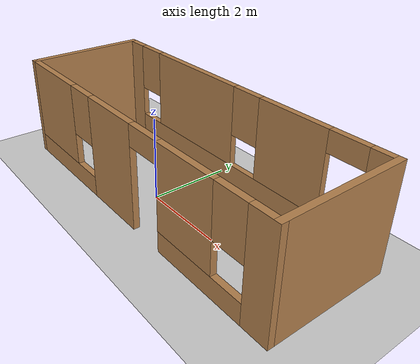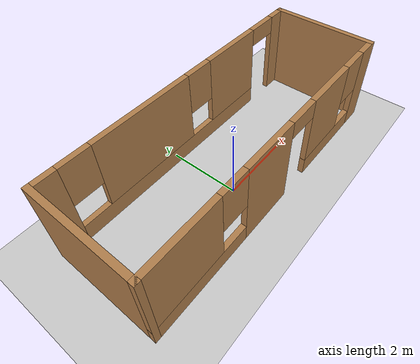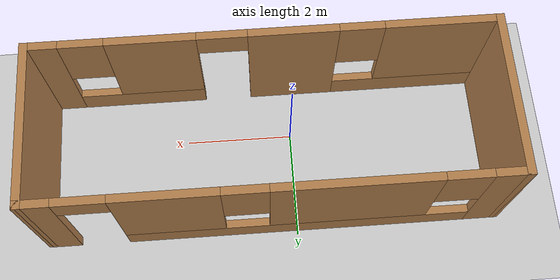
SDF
<sdf version="1.7">
 <world name="default">
  <light name="sun" type="directional">
   <pose>0 0 10 0 -0 0</pose>
   <diffuse>0.8 0.8 0.8 1</diffuse>
   <specular>0.2 0.2 0.2 1</specular>
   <attenuation>
    <range>1000</range>
    <constant>0.9</constant>
    <linear>0.01</linear>
    <quadratic>0.001</quadratic>
   </attenuation>
   <direction>-0.5 0.1 -0.9</direction>
   <spot><inner_angle>0</inner_angle><outer_angle>0</outer_angle><falloff>0</falloff></spot>
  </light>
  <model name="ground_plane">
   <static>1</static>
   <link name="link">
    <collision name="collision">
     <geometry><plane><normal>0 0 1</normal><size>100 100</size></plane></geometry>
     <surface><friction><ode><mu>100</mu><mu2>50</mu2></ode></friction></surface>
    </collision>
    <visual name="visual">
     <cast_shadows>0</cast_shadows>
     <geometry><plane><normal>0 0 1</normal><size>100 100</size></plane></geometry>
     <material>
      <script><uri>file://media/materials/scripts/gazebo.material</uri><name>Gazebo/Grey</name></script>
     </material>
    </visual>
   </link>
  </model>
  <gravity>0 0 -9.8</gravity>
  <magnetic_field>6e-06 2.3e-05 -4.2e-05</magnetic_field>
  <atmosphere type="adiabatic"/>
  <physics type="ode">
   <max_step_size>0.001</max_step_size>
   <real_time_factor>1</real_time_factor>
   <real_time_update_rate>1000</real_time_update_rate>
  </physics>
  <scene><ambient>0.4 0.4 0.4 1</ambient><background>0.7 0.7 0.7 1</background><shadows>1</shadows></scene>
  <audio><device>default</device></audio>
  <spherical_coordinates>
   <surface_model>EARTH_WGS84</surface_model>
   <latitude_deg>0</latitude_deg>
   <longitude_deg>0</longitude_deg>
   <elevation>0</elevation>
   <heading_deg>0</heading_deg>
  </spherical_coordinates>
  <model name="dummy">
   <pose>0.435 0.425 0 0 -0 0</pose>
   <link name="Wall_0">
    <collision name="Wall_0_Collision">
     <geometry><box><size>3 0.15 2.5</size></box></geometry>
     <pose>0 0 1.25 0 -0 0</pose>
    </collision>
    <visual name="Wall_0_Visual">
     <pose>0 0 1.25 0 -0 0</pose>
     <geometry><box><size>3 0.15 2.5</size></box></geometry>
     <material>
      <script><uri>file://media/materials/scripts/gazebo.material</uri><name>Gazebo/Wood</name></script>
      <ambient>1 1 1 1</ambient>
     </material>
     <meta><layer>0</layer></meta>
    </visual>
    <pose>-4.175 0 0 0 -0 1.5708</pose>
   </link>
   <link name="Wall_1">
    <pose>-0 1.425 0 0 -0 0</pose>
    <visual name="Wall_1_Visual_0">
     <pose>-3.9175 0 1.25 0 -0 0</pose>
     <geometry><box><size>0.665 0.15 2.5</size></box></geometry>
     <material>
      <script><uri>file://media/materials/scripts/gazebo.material</uri><name>Gazebo/Wood</name></script>
      <ambient>1 1 1 1</ambient>
     </material>
     <meta><layer>0</layer></meta>
    </visual>
    <collision name="Wall_1_Collision_0">
     <geometry><box><size>0.665 0.15 2.5</size></box></geometry>
     <pose>-3.9175 0 1.25 0 -0 0</pose>
    </collision>
    <visual name="Wall_1_Visual_1">
     <pose>3.9425 0 1.25 0 -0 0</pose>
     <geometry><box><size>0.615 0.15 2.5</size></box></geometry>
     <material>
      <script><uri>file://media/materials/scripts/gazebo.material</uri><name>Gazebo/Wood</name></script>
      <ambient>1 1 1 1</ambient>
     </material>
     <meta><layer>0</layer></meta>
    </visual>
    <collision name="Wall_1_Collision_1">
     <geometry><box><size>0.615 0.15 2.5</size></box></geometry>
     <pose>3.9425 0 1.25 0 -0 0</pose>
    </collision>
    <visual name="Wall_1_Visual_2">
     <pose>-0.425 0 0.25 0 -0 0</pose>
     <geometry><box><size>6.32 0.15 0.5</size></box></geometry>
     <material>
      <script><uri>file://media/materials/scripts/gazebo.material</uri><name>Gazebo/Wood</name></script>
      <ambient>1 1 1 1</ambient>
     </material>
     <meta><layer>0</layer></meta>
    </visual>
    <collision name="Wall_1_Collision_2">
     <geometry><box><size>6.32 0.15 0.5</size></box></geometry>
     <pose>-0.425 0 0.25 0 -0 0</pose>
    </collision>
    <visual name="Wall_1_Visual_3">
     <pose>-1.345 0 1.5 0 -0 0</pose>
     <geometry><box><size>2.88 0.15 2</size></box></geometry>
     <material>
      <script><uri>file://media/materials/scripts/gazebo.material</uri><name>Gazebo/Wood</name></script>
      <ambient>1 1 1 1</ambient>
     </material>
     <meta><layer>0</layer></meta>
    </visual>
    <collision name="Wall_1_Collision_3">
     <geometry><box><size>2.88 0.15 2</size></box></geometry>
     <pose>-1.345 0 1.5 0 -0 0</pose>
    </collision>
    <visual name="Wall_1_Visual_4">
     <pose>1.815 0 1.5 0 -0 0</pose>
     <geometry><box><size>1.84 0.15 2</size></box></geometry>
     <material>
      <script><uri>file://media/materials/scripts/gazebo.material</uri><name>Gazebo/Wood</name></script>
      <ambient>1 1 1 1</ambient>
     </material>
     <meta><layer>0</layer></meta>
    </visual>
    <collision name="Wall_1_Collision_4">
     <geometry><box><size>1.84 0.15 2</size></box></geometry>
     <pose>1.815 0 1.5 0 -0 0</pose>
    </collision>
    <visual name="Wall_1_Visual_5">
     <pose>-3.185 0 1.9 0 -0 0</pose>
     <geometry><box><size>0.8 0.15 1.2</size></box></geometry>
     <material>
      <script><uri>file://media/materials/scripts/gazebo.material</uri><name>Gazebo/Wood</name></script>
      <ambient>1 1 1 1</ambient>
     </material>
     <meta><layer>0</layer></meta>
    </visual>
    <collision name="Wall_1_Collision_5">
     <geometry><box><size>0.8 0.15 1.2</size></box></geometry>
     <pose>-3.185 0 1.9 0 -0 0</pose>
    </collision>
    <visual name="Wall_1_Visual_6">
     <pose>0.495 0 1.9 0 -0 0</pose>
     <geometry><box><size>0.8 0.15 1.2</size></box></geometry>
     <material>
      <script><uri>file://media/materials/scripts/gazebo.material</uri><name>Gazebo/Wood</name></script>
      <ambient>1 1 1 1</ambient>
     </material>
     <meta><layer>0</layer></meta>
    </visual>
    <collision name="Wall_1_Collision_6">
     <geometry><box><size>0.8 0.15 1.2</size></box></geometry>
     <pose>0.495 0 1.9 0 -0 0</pose>
    </collision>
    <visual name="Wall_1_Visual_7">
     <pose>3.185 0 2.25 0 -0 0</pose>
     <geometry><box><size>0.9 0.15 0.5</size></box></geometry>
     <material>
      <script><uri>file://media/materials/scripts/gazebo.material</uri><name>Gazebo/Wood</name></script>
      <ambient>1 1 1 1</ambient>
     </material>
     <meta><layer>0</layer></meta>
    </visual>
    <collision name="Wall_1_Collision_7">
     <geometry><box><size>0.9 0.15 0.5</size></box></geometry>
     <pose>3.185 0 2.25 0 -0 0</pose>
    </collision>
   </link>
   <link name="Wall_2">
    <collision name="Wall_2_Collision">
     <geometry><box><size>3 0.15 2.5</size></box></geometry>
     <pose>0 0 1.25 0 -0 0</pose>
    </collision>
    <visual name="Wall_2_Visual">
     <pose>0 0 1.25 0 -0 0</pose>
     <geometry><box><size>3 0.15 2.5</size></box></geometry>
     <material>
      <script><uri>file://media/materials/scripts/gazebo.material</uri><name>Gazebo/Wood</name></script>
      <ambient>1 1 1 1</ambient>
     </material>
     <meta><layer>0</layer></meta>
    </visual>
    <pose>4.175 0 0 0 -0 -1.5708</pose>
   </link>
   <link name="Wall_3">
    <pose>-0 -1.425 0 0 -0 3.14159</pose>
    <visual name="Wall_3_Visual_0">
     <pose>-3.9225 0 1.25 0 -0 0</pose>
     <geometry><box><size>0.655 0.15 2.5</size></box></geometry>
     <material>
      <script><uri>file://media/materials/scripts/gazebo.material</uri><name>Gazebo/Wood</name></script>
      <ambient>1 1 1 1</ambient>
     </material>
     <meta><layer>0</layer></meta>
    </visual>
    <collision name="Wall_3_Collision_0">
     <geometry><box><size>0.655 0.15 2.5</size></box></geometry>
     <pose>-3.9225 0 1.25 0 -0 0</pose>
    </collision>
    <visual name="Wall_3_Visual_1">
     <pose>0.525 0 1.25 0 -0 0</pose>
     <geometry><box><size>1.62 0.15 2.5</size></box></geometry>
     <material>
      <script><uri>file://media/materials/scripts/gazebo.material</uri><name>Gazebo/Wood</name></script>
      <ambient>1 1 1 1</ambient>
     </material>
     <meta><layer>0</layer></meta>
    </visual>
    <collision name="Wall_3_Collision_1">
     <geometry><box><size>1.62 0.15 2.5</size></box></geometry>
     <pose>0.525 0 1.25 0 -0 0</pose>
    </collision>
    <visual name="Wall_3_Visual_2">
     <pose>-2.39 0 0.25 0 -0 0</pose>
     <geometry><box><size>2.41 0.15 0.5</size></box></geometry>
     <material>
      <script><uri>file://media/materials/scripts/gazebo.material</uri><name>Gazebo/Wood</name></script>
      <ambient>1 1 1 1</ambient>
     </material>
     <meta><layer>0</layer></meta>
    </visual>
    <collision name="Wall_3_Collision_2">
     <geometry><box><size>2.41 0.15 0.5</size></box></geometry>
     <pose>-2.39 0 0.25 0 -0 0</pose>
    </collision>
    <visual name="Wall_3_Visual_3">
     <pose>2.7925 0 0.25 0 -0 0</pose>
     <geometry><box><size>2.915 0.15 0.5</size></box></geometry>
     <material>
      <script><uri>file://media/materials/scripts/gazebo.material</uri><name>Gazebo/Wood</name></script>
      <ambient>1 1 1 1</ambient>
     </material>
     <meta><layer>0</layer></meta>
    </visual>
    <collision name="Wall_3_Collision_3">
     <geometry><box><size>2.915 0.15 0.5</size></box></geometry>
     <pose>2.7925 0 0.25 0 -0 0</pose>
    </collision>
    <visual name="Wall_3_Visual_4">
     <pose>-1.99 0 1.5 0 -0 0</pose>
     <geometry><box><size>1.61 0.15 2</size></box></geometry>
     <material>
      <script><uri>file://media/materials/scripts/gazebo.material</uri><name>Gazebo/Wood</name></script>
      <ambient>1 1 1 1</ambient>
     </material>
     <meta><layer>0</layer></meta>
    </visual>
    <collision name="Wall_3_Collision_4">
     <geometry><box><size>1.61 0.15 2</size></box></geometry>
     <pose>-1.99 0 1.5 0 -0 0</pose>
    </collision>
    <visual name="Wall_3_Visual_5">
     <pose>-1.99 0 1.5 0 -0 0</pose>
     <geometry><box><size>1.61 0.15 2</size></box></geometry>
     <material>
      <script><uri>file://media/materials/scripts/gazebo.material</uri><name>Gazebo/Wood</name></script>
      <ambient>1 1 1 1</ambient>
     </material>
     <meta><layer>0</layer></meta>
    </visual>
    <collision name="Wall_3_Collision_5">
     <geometry><box><size>1.61 0.15 2</size></box></geometry>
     <pose>-1.99 0 1.5 0 -0 0</pose>
    </collision>
    <visual name="Wall_3_Visual_6">
     <pose>3.1925 0 1.5 0 -0 0</pose>
     <geometry><box><size>2.115 0.15 2</size></box></geometry>
     <material>
      <script><uri>file://media/materials/scripts/gazebo.material</uri><name>Gazebo/Wood</name></script>
      <ambient>1 1 1 1</ambient>
     </material>
     <meta><layer>0</layer></meta>
    </visual>
    <collision name="Wall_3_Collision_6">
     <geometry><box><size>2.115 0.15 2</size></box></geometry>
     <pose>3.1925 0 1.5 0 -0 0</pose>
    </collision>
    <visual name="Wall_3_Visual_7">
     <pose>-3.195 0 1.9 0 -0 0</pose>
     <geometry><box><size>0.8 0.15 1.2</size></box></geometry>
     <material>
      <script><uri>file://media/materials/scripts/gazebo.material</uri><name>Gazebo/Wood</name></script>
      <ambient>1 1 1 1</ambient>
     </material>
     <meta><layer>0</layer></meta>
    </visual>
    <collision name="Wall_3_Collision_7">
     <geometry><box><size>0.8 0.15 1.2</size></box></geometry>
     <pose>-3.195 0 1.9 0 -0 0</pose>
    </collision>
    <visual name="Wall_3_Visual_8">
     <pose>1.735 0 1.9 0 -0 0</pose>
     <geometry><box><size>0.8 0.15 1.2</size></box></geometry>
     <material>
      <script><uri>file://media/materials/scripts/gazebo.material</uri><name>Gazebo/Wood</name></script>
      <ambient>1 1 1 1</ambient>
     </material>
     <meta><layer>0</layer></meta>
    </visual>
    <collision name="Wall_3_Collision_8">
     <geometry><box><size>0.8 0.15 1.2</size></box></geometry>
     <pose>1.735 0 1.9 0 -0 0</pose>
    </collision>
    <visual name="Wall_3_Visual_9">
     <pose>-0.735 0 2.25 0 -0 0</pose>
     <geometry><box><size>0.9 0.15 0.5</size></box></geometry>
     <material>
      <script><uri>file://media/materials/scripts/gazebo.material</uri><name>Gazebo/Wood</name></script>
      <ambient>1 1 1 1</ambient>
     </material>
     <meta><layer>0</layer></meta>
    </visual>
    <collision name="Wall_3_Collision_9">
     <geometry><box><size>0.9 0.15 0.5</size></box></geometry>
     <pose>-0.735 0 2.25 0 -0 0</pose>
    </collision>
    <visual name="Wall_3_Visual_10">
     <pose>-0.735 0 2.25 0 -0 0</pose>
     <geometry><box><size>0.9 0.15 0.5</size></box></geometry>
     <material>
      <script><uri>file://media/materials/scripts/gazebo.material</uri><name>Gazebo/Wood</name></script>
      <ambient>1 1 1 1</ambient>
     </material>
     <meta><layer>0</layer></meta>
    </visual>
    <collision name="Wall_3_Collision_10">
     <geometry><box><size>0.9 0.15 0.5</size></box></geometry>
     <pose>-0.735 0 2.25 0 -0 0</pose>
    </collision>
   </link>
   <static>1</static>
  </model>
 </world>
</sdf>
